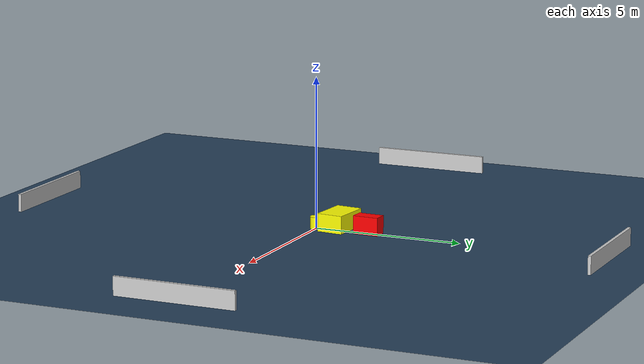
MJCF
<?xml version="1.0" ?>
<mujoco model="generated_environment">
  <option timestep="0.01" integrator="RK4" cone="elliptic"/>
  <default>
    <geom density="1"/>
  </default>
  <asset>
    <texture builtin="gradient" height="3072" name="skybox" rgb1="0.3 0.5 0.7" rgb2="0 0 0" type="skybox" width="512"/>
    <texture builtin="checker" height="300" name="groundplane" rgb1="0.2 0.3 0.4" rgb2="0.1 0.2 0.3" type="2d" width="300"/>
    <material name="groundplane" reflectance="0.2" texrepeat="5 5" texture="groundplane"/>
  </asset>
  <worldbody>
    <light dir="0 0 -1" directional="true" pos="0 0 1.5"/>
    <geom condim="3" friction="0.5 0.005 0.001" material="groundplane" name="floor" pos="0 0 0" size="0 0 0.05" type="plane"/>
    <body name="walls">
      <geom name="wall_1" condim="4" pos="-10.0 0.0 0.3" rgba="0.800000011920929 0.800000011920929 0.800000011920929 1.0" size="0.05 2.0 0.3" type="box"/>
      <geom name="wall_2" condim="4" pos="10.0 0.0 0.3" rgba="0.800000011920929 0.800000011920929 0.800000011920929 1.0" size="0.05 2.0 0.3" type="box"/>
      <geom name="wall_3" condim="4" pos="0.0 -10.0 0.3" rgba="0.800000011920929 0.800000011920929 0.800000011920929 1.0" size="2.0 0.05 0.3" type="box"/>
      <geom name="wall_4" condim="4" pos="0.0 10.0 0.3" rgba="0.800000011920929 0.800000011920929 0.800000011920929 1.0" size="2.0 0.05 0.3" type="box"/>
    </body>
    <body name="robot">
      <joint name="joint_x" type="slide" pos="0 0 0" axis="1 0 0"/>
      <joint name="joint_y" type="slide" pos="0 0 0" axis="0 1 0"/>
      <geom name="robot" type="cylinder" pos="0.0 0.0 0.2" size="0.2 0.2 0.0" mass="5.0" friction="1.0 0.005 0.0001" condim="4" rgba="1.0 1.0 0.0 1.0"/>
    </body>
    <body name="obstacle_1_movable">
      <geom name="obstacle_1_movable" condim="4" pos="-0.26219714159134455 0.7152081796092276 0.3" euler="0 0 174.43856417616124" friction="0.0 0.005 0.001" rgba="1.0 1.0 0.0 1.0" size="0.6693752064183345 0.441497546848151 0.3" type="box" mass="0.1"/>
      <joint type="free"/>
    </body>
    <body name="obstacle_2_static">
      <geom name="obstacle_2_static" condim="4" pos="-0.05242987613725713 1.8286466365652712 0.3" euler="0 0 267.96004146164495" friction="0.0 0.005 0.001" rgba="1.0 0.0 0.0 1.0" size="0.42785502309269874 0.23435726437093968 0.3" type="box"/>
    </body>
  </worldbody>
  <actuator>
    <motor name="actuator_x" joint="joint_x" gear="1" ctrlrange="-1 1"/>
    <motor name="actuator_y" joint="joint_y" gear="1" ctrlrange="-1 1"/>
  </actuator>
</mujoco>
